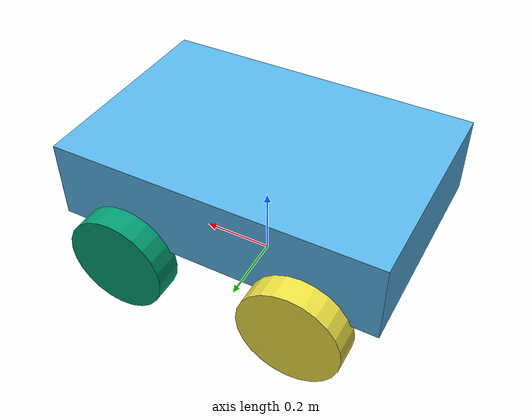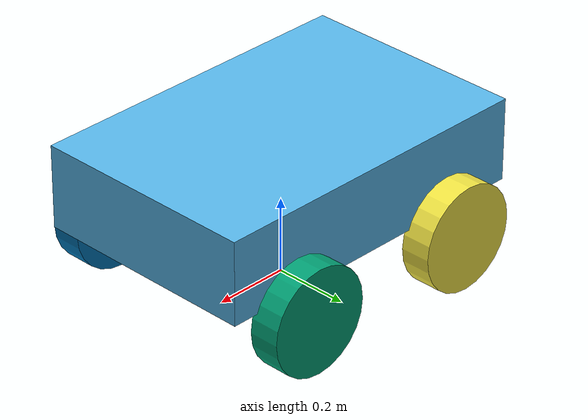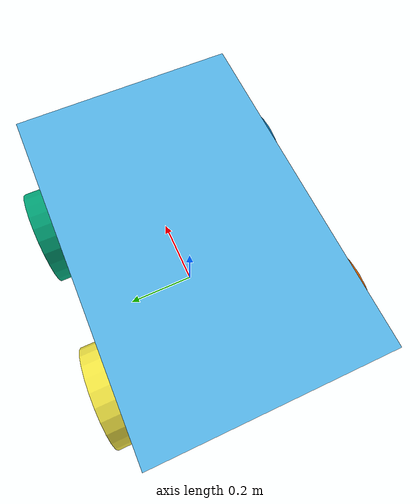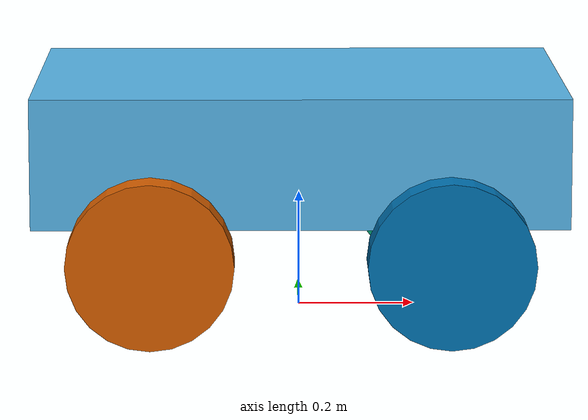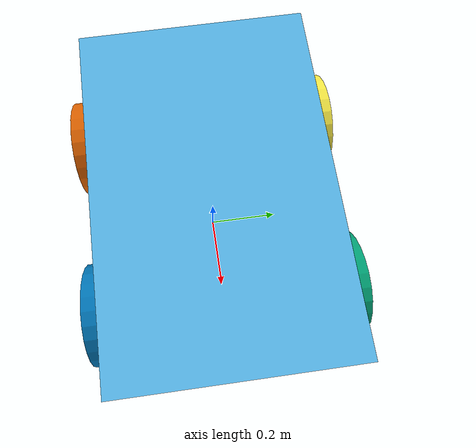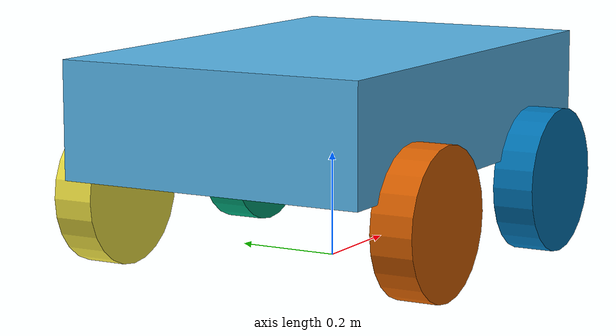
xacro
<?xml version="1.0"?>
<robot name="igvc_robot" xmlns:xacro="http://www.ros.org/wiki/xacro">
<link name="base_footprint"/>
<joint name="base_joint" type="fixed"><parent link="base_footprint"/><child link="base_link"/><origin xyz="0 0 .30"/></joint>
<link name="base_link"><inertial><mass value="42"/><inertia ixx="1.4294" iyy="3.0044" izz="4.095" ixy="0" ixz="0" iyz="0"/></inertial>
<collision><geometry><box size=".90 .60 .22"/></geometry></collision>
<visual><geometry><box size=".90 .60 .22"/></geometry></visual>
</link>
<link name="front_left_wheel"><inertial><mass value="2"/><inertia ixx="0.0108666666667" iyy="0.0196" izz="0.0108666666667" ixy="0" ixz="0" iyz="0"/></inertial>
<collision><origin rpy="1.5707963267948966 0 0"/><geometry><cylinder radius=".14" length=".08"/></geometry></collision>
<visual><origin rpy="1.5707963267948966 0 0"/><geometry><cylinder radius=".14" length=".08"/></geometry></visual>
</link><joint name="front_left_joint" type="continuous"><parent link="base_link"/><child link="front_left_wheel"/><origin xyz="0.25 0.33 -.16"/><axis xyz="0 1 0"/><limit effort="100" velocity="30"/><dynamics damping=".05"/></joint>
<link name="rear_left_wheel"><inertial><mass value="2"/><inertia ixx="0.0108666666667" iyy="0.0196" izz="0.0108666666667" ixy="0" ixz="0" iyz="0"/></inertial>
<collision><origin rpy="1.5707963267948966 0 0"/><geometry><cylinder radius=".14" length=".08"/></geometry></collision>
<visual><origin rpy="1.5707963267948966 0 0"/><geometry><cylinder radius=".14" length=".08"/></geometry></visual>
</link><joint name="rear_left_joint" type="continuous"><parent link="base_link"/><child link="rear_left_wheel"/><origin xyz="-0.25 0.33 -.16"/><axis xyz="0 1 0"/><limit effort="100" velocity="30"/><dynamics damping=".05"/></joint>
<link name="front_right_wheel"><inertial><mass value="2"/><inertia ixx="0.0108666666667" iyy="0.0196" izz="0.0108666666667" ixy="0" ixz="0" iyz="0"/></inertial>
<collision><origin rpy="1.5707963267948966 0 0"/><geometry><cylinder radius=".14" length=".08"/></geometry></collision>
<visual><origin rpy="1.5707963267948966 0 0"/><geometry><cylinder radius=".14" length=".08"/></geometry></visual>
</link><joint name="front_right_joint" type="continuous"><parent link="base_link"/><child link="front_right_wheel"/><origin xyz="0.25 -0.33 -.16"/><axis xyz="0 1 0"/><limit effort="100" velocity="30"/><dynamics damping=".05"/></joint>
<link name="rear_right_wheel"><inertial><mass value="2"/><inertia ixx="0.0108666666667" iyy="0.0196" izz="0.0108666666667" ixy="0" ixz="0" iyz="0"/></inertial>
<collision><origin rpy="1.5707963267948966 0 0"/><geometry><cylinder radius=".14" length=".08"/></geometry></collision>
<visual><origin rpy="1.5707963267948966 0 0"/><geometry><cylinder radius=".14" length=".08"/></geometry></visual>
</link><joint name="rear_right_joint" type="continuous"><parent link="base_link"/><child link="rear_right_wheel"/><origin xyz="-0.25 -0.33 -.16"/><axis xyz="0 1 0"/><limit effort="100" velocity="30"/><dynamics damping=".05"/></joint>
<link name="camera_link"/><joint name="camera_joint" type="fixed"><parent link="base_link"/><child link="camera_link"/><origin xyz="0 0 0.8" rpy="0 0.0934 0"/></joint>
<link name="lidar_link"/><joint name="lidar_joint" type="fixed"><parent link="base_link"/><child link="lidar_link"/><origin xyz="0 0 0.3" rpy="0 0 0"/></joint>
<!-- Gazebo uses the standalone SDF; these tags preserve equivalent sensors and drive configuration for URDF consumers. -->
<gazebo reference="base_link"><sensor name="camera" type="camera"><pose>0 0 .8 0 .0934 0</pose><always_on>true</always_on><update_rate>10</update_rate><topic>/camera/image</topic><gz_frame_id>camera_link</gz_frame_id><camera><horizontal_fov>1.371</horizontal_fov><image><width>640</width><height>360</height><format>R8G8B8</format></image><clip><near>.05</near><far>100</far></clip></camera></sensor>
<sensor name="lidar" type="gpu_lidar"><pose>0 0 .3 0 0 0</pose><always_on>true</always_on><update_rate>10</update_rate><topic>/scan</topic><gz_frame_id>lidar_link</gz_frame_id><lidar><scan><horizontal><samples>640</samples><resolution>1</resolution><min_angle>-3.141592653589793</min_angle><max_angle>3.141592653589793</max_angle></horizontal><vertical><samples>1</samples><resolution>1</resolution><min_angle>0</min_angle><max_angle>0</max_angle></vertical></scan><range><min>.1</min><max>20</max><resolution>.01</resolution></range></lidar></sensor></gazebo>
<gazebo><plugin filename="gz-sim-diff-drive-system" name="gz::sim::systems::DiffDrive"><left_joint>front_left_joint</left_joint><left_joint>rear_left_joint</left_joint><right_joint>front_right_joint</right_joint><right_joint>rear_right_joint</right_joint><wheel_separation>.66</wheel_separation><wheel_radius>.14</wheel_radius><topic>/cmd_vel</topic><odom_topic>/odom</odom_topic><frame_id>odom</frame_id><child_frame_id>base_link</child_frame_id><odom_publish_frequency>50</odom_publish_frequency><max_linear_velocity>1.5</max_linear_velocity><min_linear_velocity>-.3</min_linear_velocity><max_angular_velocity>1.5</max_angular_velocity><min_angular_velocity>-1.5</min_angular_velocity><max_linear_acceleration>.8</max_linear_acceleration><min_linear_acceleration>-1.2</min_linear_acceleration><max_angular_acceleration>2</max_angular_acceleration><min_angular_acceleration>-2</min_angular_acceleration></plugin></gazebo>
<gazebo><plugin filename="gz-sim-odometry-publisher-system" name="gz::sim::systems::OdometryPublisher">
  <odom_frame>world</odom_frame><robot_base_frame>base_link</robot_base_frame>
  <dimensions>2</dimensions><odom_publish_frequency>50</odom_publish_frequency>
  <odom_topic>/ground_truth/odom</odom_topic><tf_topic>/ground_truth/tf</tf_topic>
</plugin></gazebo>
</robot>
